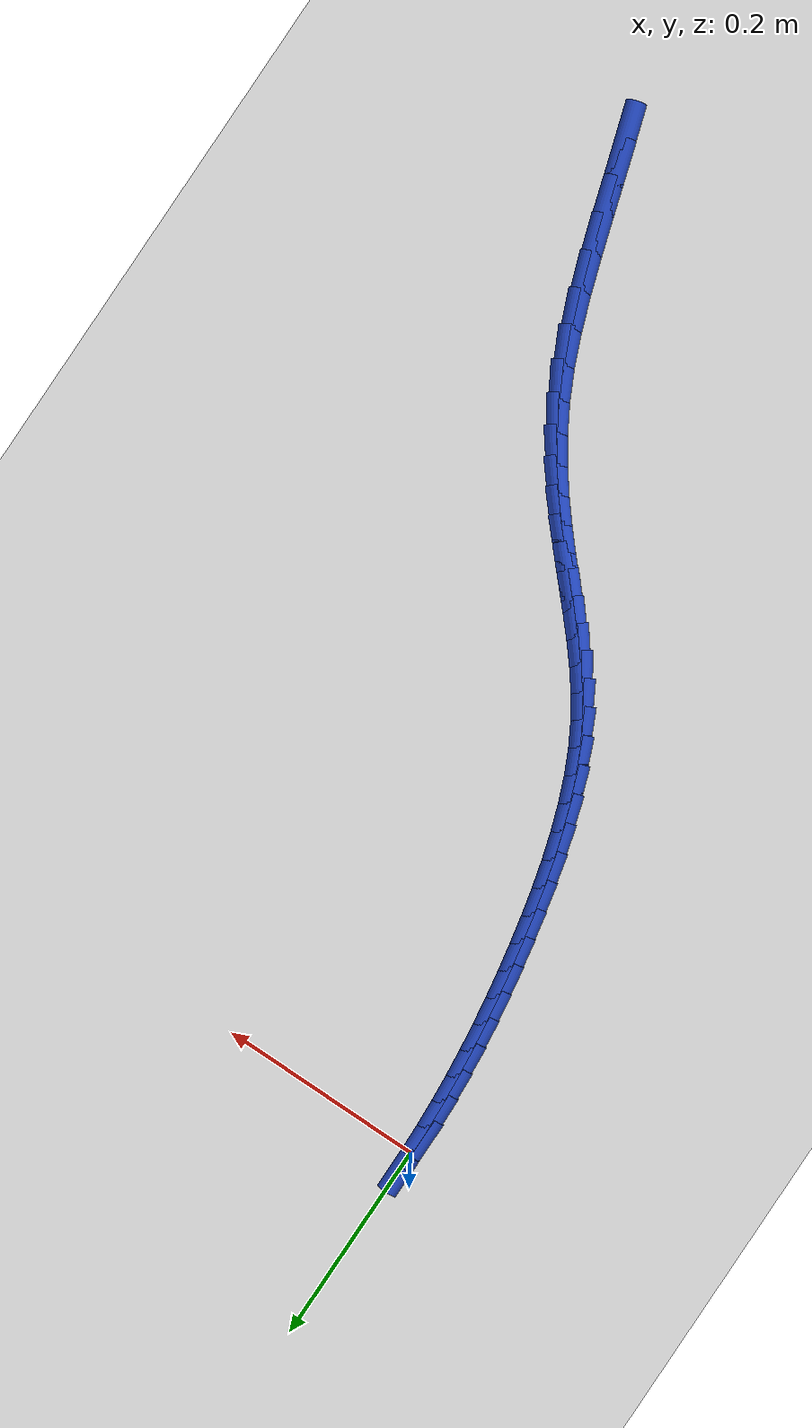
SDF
<sdf version="1.6">
 <world name="default">
  <model name="ground_plane">
   <static>1</static>
   <link name="link">
    <collision name="collision">
     <geometry><plane><normal>0 0 1</normal><size>100 100</size></plane></geometry>
     <surface><friction><ode><mu>100</mu><mu2>50</mu2></ode></friction></surface>
    </collision>
    <visual name="visual">
     <cast_shadows>0</cast_shadows>
     <geometry><plane><normal>0 0 1</normal><size>100 100</size></plane></geometry>
     <material>
      <script><uri>file://media/materials/scripts/gazebo.material</uri><name>Gazebo/WhiteGlow</name></script>
     </material>
    </visual>
   </link>
  </model>
  <model name="line">
   <link name="link_0">
    <pose>1.3010426069826053e-17 2.0816681711721685e-17 0.01 0 1.57 -1.5697173017032293</pose>
    <collision name="collision">
     <geometry><cylinder><radius>0.01</radius><length>0.08</length></cylinder></geometry>
    </collision>
    <visual name="visual">
     <material>
      <script><name>Gazebo/Blue</name><uri>file://media/materials/scripts/gazebo.material</uri></script>
     </material>
     <geometry><cylinder><radius>0.01</radius><length>0.08</length></cylinder></geometry>
    </visual>
   </link>
   <link name="link_256">
    <pose>0.35860286637079763 -0.8860096790929166 0.01 0 1.57 -1.2645361199614422</pose>
    <collision name="collision">
     <geometry><cylinder><radius>0.01</radius><length>0.08</length></cylinder></geometry>
    </collision>
    <visual name="visual">
     <material>
      <script><name>Gazebo/Blue</name><uri>file://media/materials/scripts/gazebo.material</uri></script>
     </material>
     <geometry><cylinder><radius>0.01</radius><length>0.08</length></cylinder></geometry>
    </visual>
   </link>
   <link name="link_257">
    <pose>0.3480208465282279 -0.8525443963028665 0.01 0 1.57 -1.2721717376156212</pose>
    <collision name="collision">
     <geometry><cylinder><radius>0.01</radius><length>0.08</length></cylinder></geometry>
    </collision>
    <visual name="visual">
     <material>
      <script><name>Gazebo/Blue</name><uri>file://media/materials/scripts/gazebo.material</uri></script>
     </material>
     <geometry><cylinder><radius>0.01</radius><length>0.08</length></cylinder></geometry>
    </visual>
   </link>
   <link name="link_258">
    <pose>0.33737153415430643 -0.8179495973269763 0.01 0 1.57 -1.2674895156699577</pose>
    <collision name="collision">
     <geometry><cylinder><radius>0.01</radius><length>0.08</length></cylinder></geometry>
    </collision>
    <visual name="visual">
     <material>
      <script><name>Gazebo/Blue</name><uri>file://media/materials/scripts/gazebo.material</uri></script>
     </material>
     <geometry><cylinder><radius>0.01</radius><length>0.08</length></cylinder></geometry>
    </visual>
   </link>
   <link name="link_259">
    <pose>0.326423788993038 -0.7829686639795753 0.01 0 1.57 -1.2507079641079022</pose>
    <collision name="collision">
     <geometry><cylinder><radius>0.01</radius><length>0.08</length></cylinder></geometry>
    </collision>
    <visual name="visual">
     <material>
      <script><name>Gazebo/Blue</name><uri>file://media/materials/scripts/gazebo.material</uri></script>
     </material>
     <geometry><cylinder><radius>0.01</radius><length>0.08</length></cylinder></geometry>
    </visual>
   </link>
   <link name="link_260">
    <pose>0.3149464707884276 -0.7483449780749943 0.01 0 1.57 -1.2207657770434792</pose>
    <collision name="collision">
     <geometry><cylinder><radius>0.01</radius><length>0.08</length></cylinder></geometry>
    </collision>
    <visual name="visual">
     <material>
      <script><name>Gazebo/Blue</name><uri>file://media/materials/scripts/gazebo.material</uri></script>
     </material>
     <geometry><cylinder><radius>0.01</radius><length>0.08</length></cylinder></geometry>
    </visual>
   </link>
   <link name="link_261">
    <pose>0.3027084392844801 -0.7148219214275626 0.01 0 1.57 -1.175190969133245</pose>
    <collision name="collision">
     <geometry><cylinder><radius>0.01</radius><length>0.08</length></cylinder></geometry>
    </collision>
    <visual name="visual">
     <material>
      <script><name>Gazebo/Blue</name><uri>file://media/materials/scripts/gazebo.material</uri></script>
     </material>
     <geometry><cylinder><radius>0.01</radius><length>0.08</length></cylinder></geometry>
    </visual>
   </link>
   <link name="link_262">
    <pose>0.28947855422520063 -0.6831428758516107 0.01 0 1.57 -1.1113202305038492</pose>
    <collision name="collision">
     <geometry><cylinder><radius>0.01</radius><length>0.08</length></cylinder></geometry>
    </collision>
    <visual name="visual">
     <material>
      <script><name>Gazebo/Blue</name><uri>file://media/materials/scripts/gazebo.material</uri></script>
     </material>
     <geometry><cylinder><radius>0.01</radius><length>0.08</length></cylinder></geometry>
    </visual>
   </link>
   <link name="link_263">
    <pose>0.2750524574831989 -0.6539872558831479 0.01 0 1.57 -1.0418630980813808</pose>
    <collision name="collision">
     <geometry><cylinder><radius>0.01</radius><length>0.08</length></cylinder></geometry>
    </collision>
    <visual name="visual">
     <material>
      <script><name>Gazebo/Blue</name><uri>file://media/materials/scripts/gazebo.material</uri></script>
     </material>
     <geometry><cylinder><radius>0.01</radius><length>0.08</length></cylinder></geometry>
    </visual>
   </link>
   <link name="link_264">
    <pose>0.25950027242536355 -0.6273788958241657 0.01 0 1.57 -0.9781057109435796</pose>
    <collision name="collision">
     <geometry><cylinder><radius>0.01</radius><length>0.08</length></cylinder></geometry>
    </collision>
    <visual name="visual">
     <material>
      <script><name>Gazebo/Blue</name><uri>file://media/materials/scripts/gazebo.material</uri></script>
     </material>
     <geometry><cylinder><radius>0.01</radius><length>0.08</length></cylinder></geometry>
    </visual>
   </link>
   <link name="link_265">
    <pose>0.24305314314973683 -0.6029570429978937 0.01 0 1.57 -0.9228320187186237</pose>
    <collision name="collision">
     <geometry><cylinder><radius>0.01</radius><length>0.08</length></cylinder></geometry>
    </collision>
    <visual name="visual">
     <material>
      <script><name>Gazebo/Blue</name><uri>file://media/materials/scripts/gazebo.material</uri></script>
     </material>
     <geometry><cylinder><radius>0.01</radius><length>0.08</length></cylinder></geometry>
    </visual>
   </link>
   <link name="link_266">
    <pose>0.22594425997852127 -0.5803560574614111 0.01 0 1.57 -0.8784075349572311</pose>
    <collision name="collision">
     <geometry><cylinder><radius>0.01</radius><length>0.08</length></cylinder></geometry>
    </collision>
    <visual name="visual">
     <material>
      <script><name>Gazebo/Blue</name><uri>file://media/materials/scripts/gazebo.material</uri></script>
     </material>
     <geometry><cylinder><radius>0.01</radius><length>0.08</length></cylinder></geometry>
    </visual>
   </link>
   <link name="link_267">
    <pose>0.2084068132339213 -0.5592102992718001 0.01 0 1.57 -0.8468030830102005</pose>
    <collision name="collision">
     <geometry><cylinder><radius>0.01</radius><length>0.08</length></cylinder></geometry>
    </collision>
    <visual name="visual">
     <material>
      <script><name>Gazebo/Blue</name><uri>file://media/materials/scripts/gazebo.material</uri></script>
     </material>
     <geometry><cylinder><radius>0.01</radius><length>0.08</length></cylinder></geometry>
    </visual>
   </link>
   <link name="link_268">
    <pose>0.19067399323814072 -0.5391541284861419 0.01 0 1.57 -0.8295860443621682</pose>
    <collision name="collision">
     <geometry><cylinder><radius>0.01</radius><length>0.08</length></cylinder></geometry>
    </collision>
    <visual name="visual">
     <material>
      <script><name>Gazebo/Blue</name><uri>file://media/materials/scripts/gazebo.material</uri></script>
     </material>
     <geometry><cylinder><radius>0.01</radius><length>0.08</length></cylinder></geometry>
    </visual>
   </link>
   <link name="link_269">
    <pose>0.17297899031338326 -0.5198219051615169 0.01 0 1.57 -0.8279551239704976</pose>
    <collision name="collision">
     <geometry><cylinder><radius>0.01</radius><length>0.08</length></cylinder></geometry>
    </collision>
    <visual name="visual">
     <material>
      <script><name>Gazebo/Blue</name><uri>file://media/materials/scripts/gazebo.material</uri></script>
     </material>
     <geometry><cylinder><radius>0.01</radius><length>0.08</length></cylinder></geometry>
    </visual>
   </link>
   <link name="link_270">
    <pose>0.15555499478185283 -0.5008479893550069 0.01 0 1.57 -0.8427555251856528</pose>
    <collision name="collision">
     <geometry><cylinder><radius>0.01</radius><length>0.08</length></cylinder></geometry>
    </collision>
    <visual name="visual">
     <material>
      <script><name>Gazebo/Blue</name><uri>file://media/materials/scripts/gazebo.material</uri></script>
     </material>
     <geometry><cylinder><radius>0.01</radius><length>0.08</length></cylinder></geometry>
    </visual>
   </link>
   <link name="link_271">
    <pose>0.13863519696575322 -0.4818667411236924 0.01 0 1.57 -0.8744169640305164</pose>
    <collision name="collision">
     <geometry><cylinder><radius>0.01</radius><length>0.08</length></cylinder></geometry>
    </collision>
    <visual name="visual">
     <material>
      <script><name>Gazebo/Blue</name><uri>file://media/materials/scripts/gazebo.material</uri></script>
     </material>
     <geometry><cylinder><radius>0.01</radius><length>0.08</length></cylinder></geometry>
    </visual>
   </link>
   <link name="link_272">
    <pose>0.12245278718728818 -0.46251252052465464 0.01 0 1.57 -0.9227809936528182</pose>
    <collision name="collision">
     <geometry><cylinder><radius>0.01</radius><length>0.08</length></cylinder></geometry>
    </collision>
    <visual name="visual">
     <material>
      <script><name>Gazebo/Blue</name><uri>file://media/materials/scripts/gazebo.material</uri></script>
     </material>
     <geometry><cylinder><radius>0.01</radius><length>0.08</length></cylinder></geometry>
    </visual>
   </link>
   <link name="link_273">
    <pose>0.10724095576866158 -0.44241968761497474 0.01 0 1.57 -0.9868324819278474</pose>
    <collision name="collision">
     <geometry><cylinder><radius>0.01</radius><length>0.08</length></cylinder></geometry>
    </collision>
    <visual name="visual">
     <material>
      <script><name>Gazebo/Blue</name><uri>file://media/materials/scripts/gazebo.material</uri></script>
     </material>
     <geometry><cylinder><radius>0.01</radius><length>0.08</length></cylinder></geometry>
    </visual>
   </link>
   <link name="link_274">
    <pose>0.09323289303207719 -0.4212226024517337 0.01 0 1.57 -1.0613261372474032</pose>
    <collision name="collision">
     <geometry><cylinder><radius>0.01</radius><length>0.08</length></cylinder></geometry>
    </collision>
    <visual name="visual">
     <material>
      <script><name>Gazebo/Blue</name><uri>file://media/materials/scripts/gazebo.material</uri></script>
     </material>
     <geometry><cylinder><radius>0.01</radius><length>0.08</length></cylinder></geometry>
    </visual>
   </link>
   <link name="link_275">
    <pose>0.08061387341588923 -0.3986347241252905 0.01 0 1.57 -1.1297652473827167</pose>
    <collision name="collision">
     <geometry><cylinder><radius>0.01</radius><length>0.08</length></cylinder></geometry>
    </collision>
    <visual name="visual">
     <material>
      <script><name>Gazebo/Blue</name><uri>file://media/materials/scripts/gazebo.material</uri></script>
     </material>
     <geometry><cylinder><radius>0.01</radius><length>0.08</length></cylinder></geometry>
    </visual>
   </link>
   <link name="link_276">
    <pose>0.06933903555432394 -0.3747494174726315 0.01 0 1.57 -1.1884155823860758</pose>
    <collision name="collision">
     <geometry><cylinder><radius>0.01</radius><length>0.08</length></cylinder></geometry>
    </collision>
    <visual name="visual">
     <material>
      <script><name>Gazebo/Blue</name><uri>file://media/materials/scripts/gazebo.material</uri></script>
     </material>
     <geometry><cylinder><radius>0.01</radius><length>0.08</length></cylinder></geometry>
    </visual>
   </link>
   <link name="link_277">
    <pose>0.05929451032159597 -0.3497739646096713 0.01 0 1.57 -1.2383414769531982</pose>
    <collision name="collision">
     <geometry><cylinder><radius>0.01</radius><length>0.08</length></cylinder></geometry>
    </collision>
    <visual name="visual">
     <material>
      <script><name>Gazebo/Blue</name><uri>file://media/materials/scripts/gazebo.material</uri></script>
     </material>
     <geometry><cylinder><radius>0.01</radius><length>0.08</length></cylinder></geometry>
    </visual>
   </link>
   <link name="link_278">
    <pose>0.05036641556136595 -0.32391566916302506 0.01 0 1.57 -1.2805364215310229</pose>
    <collision name="collision">
     <geometry><cylinder><radius>0.01</radius><length>0.08</length></cylinder></geometry>
    </collision>
    <visual name="visual">
     <material>
      <script><name>Gazebo/Blue</name><uri>file://media/materials/scripts/gazebo.material</uri></script>
     </material>
     <geometry><cylinder><radius>0.01</radius><length>0.08</length></cylinder></geometry>
    </visual>
   </link>
   <link name="link_279">
    <pose>0.042440869117294534 -0.2973818347593079 0.01 0 1.57 -1.3158614554945995</pose>
    <collision name="collision">
     <geometry><cylinder><radius>0.01</radius><length>0.08</length></cylinder></geometry>
    </collision>
    <visual name="visual">
     <material>
      <script><name>Gazebo/Blue</name><uri>file://media/materials/scripts/gazebo.material</uri></script>
     </material>
     <geometry><cylinder><radius>0.01</radius><length>0.08</length></cylinder></geometry>
    </visual>
   </link>
   <link name="link_280">
    <pose>0.0354039888330426 -0.27037976502513594 0.01 0 1.57 -1.3450203809429497</pose>
    <collision name="collision">
     <geometry><cylinder><radius>0.01</radius><length>0.08</length></cylinder></geometry>
    </collision>
    <visual name="visual">
     <material>
      <script><name>Gazebo/Blue</name><uri>file://media/materials/scripts/gazebo.material</uri></script>
     </material>
     <geometry><cylinder><radius>0.01</radius><length>0.08</length></cylinder></geometry>
    </visual>
   </link>
   <link name="link_281">
    <pose>0.029141892552270305 -0.24311676358712245 0.01 0 1.57 -1.3685525730991153</pose>
    <collision name="collision">
     <geometry><cylinder><radius>0.01</radius><length>0.08</length></cylinder></geometry>
    </collision>
    <visual name="visual">
     <material>
      <script><name>Gazebo/Blue</name><uri>file://media/materials/scripts/gazebo.material</uri></script>
     </material>
     <geometry><cylinder><radius>0.01</radius><length>0.08</length></cylinder></geometry>
    </visual>
   </link>
   <link name="link_282">
    <pose>0.023540698118638542 -0.21580013407188348 0.01 0 1.57 -1.3877852555597059</pose>
    <collision name="collision">
     <geometry><cylinder><radius>0.01</radius><length>0.08</length></cylinder></geometry>
    </collision>
    <visual name="visual">
     <material>
      <script><name>Gazebo/Blue</name><uri>file://media/materials/scripts/gazebo.material</uri></script>
     </material>
     <geometry><cylinder><radius>0.01</radius><length>0.08</length></cylinder></geometry>
    </visual>
   </link>
   <link name="link_283">
    <pose>0.01850658721524937 -0.18860078271385636 0.01 0 1.57 -1.4070447867367186</pose>
    <collision name="collision">
     <geometry><cylinder><radius>0.01</radius><length>0.08</length></cylinder></geometry>
    </collision>
    <visual name="visual">
     <material>
      <script><name>Gazebo/Blue</name><uri>file://media/materials/scripts/gazebo.material</uri></script>
     </material>
     <geometry><cylinder><radius>0.01</radius><length>0.08</length></cylinder></geometry>
    </visual>
   </link>
   <link name="link_284">
    <pose>0.014033670674872042 -0.16153010531311512 0.01 0 1.57 -1.4274441465245054</pose>
    <collision name="collision">
     <geometry><cylinder><radius>0.01</radius><length>0.08</length></cylinder></geometry>
    </collision>
    <visual name="visual">
     <material>
      <script><name>Gazebo/Blue</name><uri>file://media/materials/scripts/gazebo.material</uri></script>
     </material>
     <geometry><cylinder><radius>0.01</radius><length>0.08</length></cylinder></geometry>
    </visual>
   </link>
   <link name="link_285">
    <pose>0.010140140019831045 -0.13455581339364037 0.01 0 1.57 -1.4489236273235326</pose>
    <collision name="collision">
     <geometry><cylinder><radius>0.01</radius><length>0.08</length></cylinder></geometry>
    </collision>
    <visual name="visual">
     <material>
      <script><name>Gazebo/Blue</name><uri>file://media/materials/scripts/gazebo.material</uri></script>
     </material>
     <geometry><cylinder><radius>0.01</radius><length>0.08</length></cylinder></geometry>
    </visual>
   </link>
   <link name="link_286">
    <pose>0.006844187392278629 -0.10764561735499592 0.01 0 1.57 -1.471409719637662</pose>
    <collision name="collision">
     <geometry><cylinder><radius>0.01</radius><length>0.08</length></cylinder></geometry>
    </collision>
    <visual name="visual">
     <material>
      <script><name>Gazebo/Blue</name><uri>file://media/materials/scripts/gazebo.material</uri></script>
     </material>
     <geometry><cylinder><radius>0.01</radius><length>0.08</length></cylinder></geometry>
    </visual>
   </link>
   <link name="link_287">
    <pose>0.0041640049343670636 -0.0807672275967457 0.01 0 1.57 -1.4948154272990517</pose>
    <collision name="collision">
     <geometry><cylinder><radius>0.01</radius><length>0.08</length></cylinder></geometry>
    </collision>
    <visual name="visual">
     <material>
      <script><name>Gazebo/Blue</name><uri>file://media/materials/scripts/gazebo.material</uri></script>
     </material>
     <geometry><cylinder><radius>0.01</radius><length>0.08</length></cylinder></geometry>
    </visual>
   </link>
   <link name="link_288">
    <pose>0.0021177847882485976 -0.053888354518453696 0.01 0 1.57 -1.5190410105578849</pose>
    <collision name="collision">
     <geometry><cylinder><radius>0.01</radius><length>0.08</length></cylinder></geometry>
    </collision>
    <visual name="visual">
     <material>
      <script><name>Gazebo/Blue</name><uri>file://media/materials/scripts/gazebo.material</uri></script>
     </material>
     <geometry><cylinder><radius>0.01</radius><length>0.08</length></cylinder></geometry>
    </visual>
   </link>
   <link name="link_289">
    <pose>0.0007237190960754946 -0.026976708519683812 0.01 0 1.57 -1.5439752064191645</pose>
    <collision name="collision">
     <geometry><cylinder><radius>0.01</radius><length>0.08</length></cylinder></geometry>
    </collision>
    <visual name="visual">
     <material>
      <script><name>Gazebo/Blue</name><uri>file://media/materials/scripts/gazebo.material</uri></script>
     </material>
     <geometry><cylinder><radius>0.01</radius><length>0.08</length></cylinder></geometry>
    </visual>
   </link>
   <link name="link_290">
    <pose>1.214306433183765e-17 4.85722573273506e-17 0.01 0 1.57 -1.5694969155801646</pose>
    <collision name="collision">
     <geometry><cylinder><radius>0.01</radius><length>0.08</length></cylinder></geometry>
    </collision>
    <visual name="visual">
     <material>
      <script><name>Gazebo/Blue</name><uri>file://media/materials/scripts/gazebo.material</uri></script>
     </material>
     <geometry><cylinder><radius>0.01</radius><length>0.08</length></cylinder></geometry>
    </visual>
   </link>
  </model>
 </world>
</sdf>
